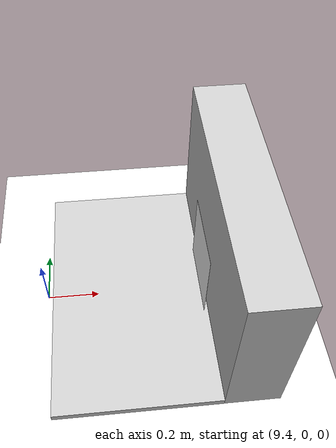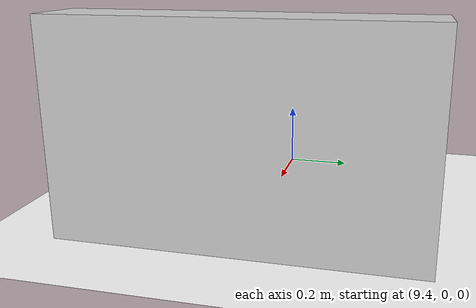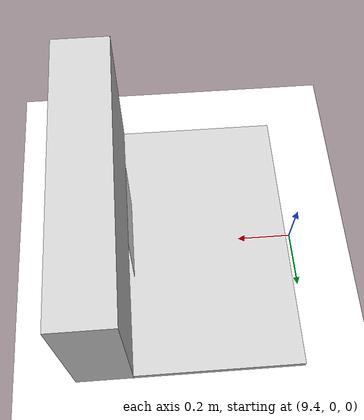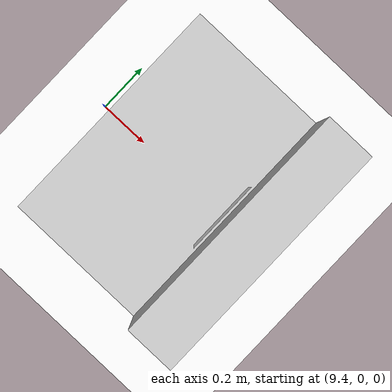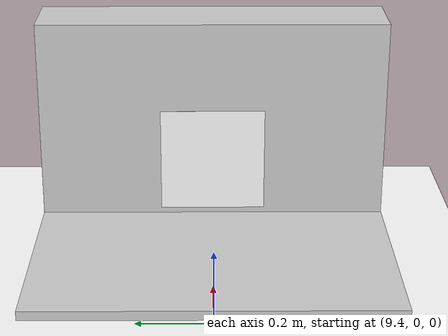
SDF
<?xml version="1.0" ?>

<sdf version="1.6">
  <world name="test_world">

    <!-- Set the coordinates for the world origin -->
    <spherical_coordinates>
      <surface_model>EARTH_WGS84</surface_model>
      <world_frame_orientation>ENU</world_frame_orientation>
      <latitude_deg>52.2184</latitude_deg>
      <longitude_deg>6.8753</longitude_deg>
      <elevation>0</elevation>
      <heading_deg>0</heading_deg>
    </spherical_coordinates>

    <physics name="1ms" type="ignored">
      <max_step_size>0.001</max_step_size>
      <real_time_factor>1.0</real_time_factor>
    </physics>
    <plugin
      filename="ignition-gazebo-physics-system"
      name="ignition::gazebo::systems::Physics">
    </plugin>
    <plugin
      filename="ignition-gazebo-user-commands-system"
      name="ignition::gazebo::systems::UserCommands">
    </plugin>
    <plugin
      filename="ignition-gazebo-scene-broadcaster-system"
      name="ignition::gazebo::systems::SceneBroadcaster">
    </plugin>
    <plugin
      filename="ignition-gazebo-contact-system"
      name="ignition::gazebo::systems::Contact">
    </plugin>

    <light type="directional" name="sun">
      <cast_shadows>true</cast_shadows>
      <pose>0 0 10 0 0 0</pose>
      <diffuse>0.8 0.8 0.8 1</diffuse>
      <specular>0.2 0.2 0.2 1</specular>
      <attenuation>
        <range>1000</range>
        <constant>0.9</constant>
        <linear>0.01</linear>
        <quadratic>0.001</quadratic>
      </attenuation>
      <direction>-0.5 0.1 -0.9</direction>
    </light>

    <!-- Ground plane -->
    <model name="ground_plane">
      <static>true</static>
      <link name="link">
        <collision name="collision">
          <geometry>
            <plane>
              <normal>0 0 1</normal>
              <size>100 100</size>
            </plane>
          </geometry>
        </collision>
        <visual name="visual">
          <geometry>
            <plane>
              <normal>0 0 1</normal>
              <size>100 100</size>
            </plane>
          </geometry>
          <material>
            <ambient>1 1 1 1</ambient>
            <diffuse>1 1 1 1</diffuse>
            <specular>1 1 1 1</specular>
          </material>
        </visual>
      </link>
    </model>

    <!-- Docking station -->
    <model name="docking_station">
      <static>true</static>
      <pose>10.12 0 0.3 0 0 0</pose>
      <link name="vertical_link">
        <collision name="vertical_link_collision">
          <geometry>
            <box>
              <size>0.2 1.0 0.6</size>
            </box>
          </geometry>
        </collision>
        <visual name="vertical_link_visual">
          <geometry>
            <box>
              <size>0.2 1.0 0.6</size>
            </box>
          </geometry>
          <material>
            <ambient>0.8 0.8 0.8 1</ambient>
            <diffuse>0.8 0.8 0.8 1</diffuse>
            <specular>0.8 0.8 0.8 1</specular>
          </material>
        </visual>
      </link>
      <link name="horizontal_link">
        <collision name="horizontal_link_collision">
          <pose>-0.4 0 -0.3 0 0 0</pose>
          <geometry>
            <box>
              <size>0.6 1.0 0.05</size>
            </box>
          </geometry>
        </collision>
        <visual name="horizontal_link_visual">
          <pose>-0.4 0 -0.3 0 0 0</pose>
          <geometry>
            <box>
              <size>0.6 1.0 0.05</size>
            </box>
          </geometry>
          <material>
            <ambient>0.8 0.8 0.8 1</ambient>
            <diffuse>0.8 0.8 0.8 1</diffuse>
            <specular>0.8 0.8 0.8 1</specular>
          </material>
        </visual>
      </link>
    </model>

    <!-- Docking tag -->
    <model name="tag_plane">
      <static>true</static>
      <pose>10 0 0.2 0 0 0</pose>
      <link name="tag_link">
        <visual name="tag_visual">
          <geometry>
            <plane>
              <normal>-1 0 0</normal>
              <size>0.3 0.3</size>
            </plane>
          </geometry>
          <material>
            <ambient>1 1 1 1</ambient>
            <diffuse>1 1 1 1</diffuse>
            <specular>0.8 0.8 1</specular>
            <pbr>
              <metal>
                <albedo_map>marker.jpeg</albedo_map>
                <normal_map>marker.jpeg</normal_map>
              </metal>
            </pbr>
          </material>
        </visual>
      </link>
    </model>

    <!-- Line -->
    <model name="line_plane">
      <static>true</static>
      <pose>0 4.5 0.01 0 0 0</pose>
      <link name="line_link">
        <visual name="line_visual">
          <pose>0 0 0 0 0 0</pose>
          <geometry>
            <plane>
              <normal>0 0 1</normal>
              <size>11 0.1</size>
            </plane>
          </geometry>
          <material>
            <ambient>1 1 1 1</ambient>
            <diffuse>1 1 1 1</diffuse>
            <specular>0.8 0.8 1</specular>
            <pbr>
              <metal>
                <albedo_map>line.jpg</albedo_map>
                <normal_map>line.jpg</normal_map>
              </metal>
            </pbr>
          </material>
        </visual>
      </link>
    </model>

  </world>
</sdf>
